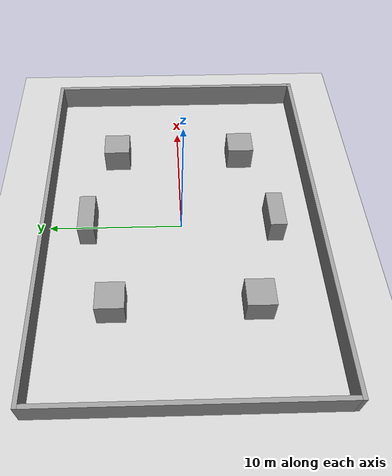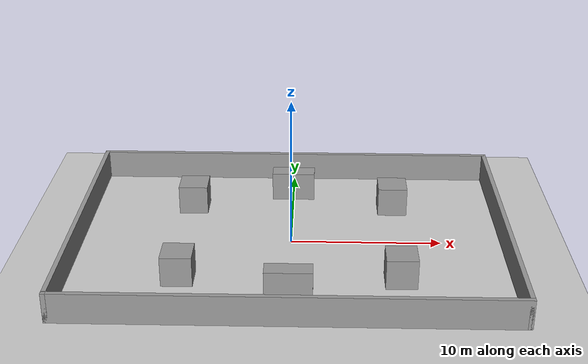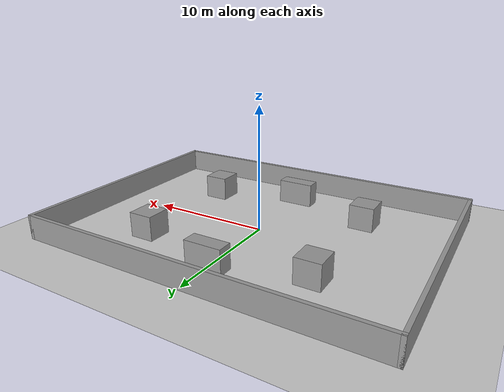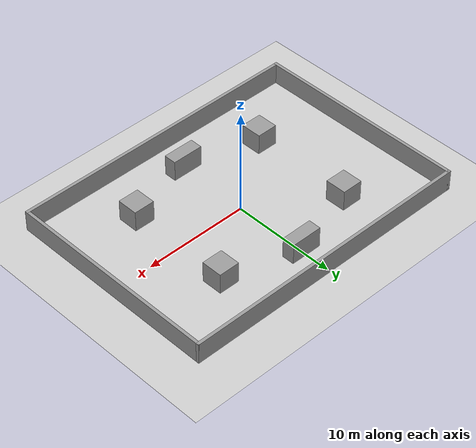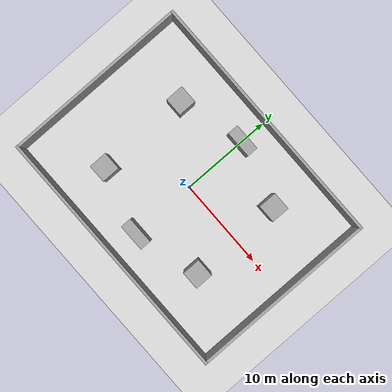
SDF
<?xml version="1.0" ?>
<sdf version='1.7'>
  <world name='room'>

    <light name='sun' type='directional'>
      <cast_shadows>1</cast_shadows>
      <pose>0 0 10 0 -0 0</pose>
      <diffuse>0.8 0.8 0.8 1</diffuse>
      <specular>0.2 0.2 0.2 1</specular>
      <attenuation>
        <range>1000</range>
        <constant>0.9</constant>
        <linear>0.01</linear>
        <quadratic>0.001</quadratic>
      </attenuation>
      <direction>-0.5 0.1 -0.9</direction>
      <spot>
        <inner_angle>0</inner_angle>
        <outer_angle>0</outer_angle>
        <falloff>0</falloff>
      </spot>
    </light>

    <!-- 地面：只做承载与显示，范围远大于房间（房间由外墙封闭，车出不去） -->
    <model name='ground_plane'>
      <static>1</static>
      <link name='link'>
        <collision name='collision'>
          <geometry>
            <plane>
              <normal>0 0 1</normal>
              <size>100 100</size>
            </plane>
          </geometry>
          <surface>
            <friction>
              <ode>
                <mu>100</mu>
                <mu2>50</mu2>
              </ode>
              <torsional>
                <ode/>
              </torsional>
            </friction>
            <contact>
              <ode/>
            </contact>
            <bounce/>
          </surface>
          <max_contacts>10</max_contacts>
        </collision>
        <visual name='visual'>
          <cast_shadows>0</cast_shadows>
          <geometry>
            <plane>
              <normal>0 0 1</normal>
              <size>100 100</size>
            </plane>
          </geometry>
          <material>
            <script>
              <uri>file://media/materials/scripts/gazebo.material</uri>
              <name>Gazebo/Grey</name>
            </script>
          </material>
        </visual>
        <self_collide>0</self_collide>
        <enable_wind>0</enable_wind>
        <kinematic>0</kinematic>
      </link>
    </model>

    <gravity>0 0 -9.8</gravity>
    <magnetic_field>6e-06 2.3e-05 -4.2e-05</magnetic_field>
    <atmosphere type='adiabatic'/>
    <physics type='ode'>
      <max_step_size>0.001</max_step_size>
      <real_time_factor>1</real_time_factor>
      <real_time_update_rate>2000</real_time_update_rate>
    </physics>
    <scene>
      <ambient>0.4 0.4 0.4 1</ambient>
      <background>0.7 0.7 0.7 1</background>
      <shadows>1</shadows>
    </scene>
    <wind/>

    <model name='room_wall_north'>
      <static>1</static>
      <pose>0 10.15 1.0 0 0 0</pose>
      <link name='Wall'>
        <collision name='Wall_Collision'>
          <pose>0 0 0 0 -0 0</pose>
          <geometry><box><size>28.6 0.3 2.0</size></box></geometry>
          <max_contacts>10</max_contacts>
          <surface>
            <contact><ode/></contact>
            <bounce/>
            <friction><torsional><ode/></torsional><ode/></friction>
          </surface>
        </collision>
        <visual name='Wall_Visual'>
          <pose>0 0 0 0 -0 0</pose>
          <geometry><box><size>28.6 0.3 2.0</size></box></geometry>
          <material>
            <script>
              <uri>file://media/materials/scripts/gazebo.material</uri>
              <name>Gazebo/Grey</name>
            </script>
          </material>
        </visual>
        <self_collide>0</self_collide>
        <enable_wind>0</enable_wind>
        <kinematic>0</kinematic>
      </link>
    </model>

    <model name='room_wall_south'>
      <static>1</static>
      <pose>0 -10.15 1.0 0 0 0</pose>
      <link name='Wall'>
        <collision name='Wall_Collision'>
          <pose>0 0 0 0 -0 0</pose>
          <geometry><box><size>28.6 0.3 2.0</size></box></geometry>
          <max_contacts>10</max_contacts>
          <surface>
            <contact><ode/></contact>
            <bounce/>
            <friction><torsional><ode/></torsional><ode/></friction>
          </surface>
        </collision>
        <visual name='Wall_Visual'>
          <pose>0 0 0 0 -0 0</pose>
          <geometry><box><size>28.6 0.3 2.0</size></box></geometry>
          <material>
            <script>
              <uri>file://media/materials/scripts/gazebo.material</uri>
              <name>Gazebo/Grey</name>
            </script>
          </material>
        </visual>
        <self_collide>0</self_collide>
        <enable_wind>0</enable_wind>
        <kinematic>0</kinematic>
      </link>
    </model>

    <model name='room_wall_east'>
      <static>1</static>
      <pose>14.15 0 1.0 0 0 1.5708</pose>
      <link name='Wall'>
        <collision name='Wall_Collision'>
          <pose>0 0 0 0 -0 0</pose>
          <geometry><box><size>20.6 0.3 2.0</size></box></geometry>
          <max_contacts>10</max_contacts>
          <surface>
            <contact><ode/></contact>
            <bounce/>
            <friction><torsional><ode/></torsional><ode/></friction>
          </surface>
        </collision>
        <visual name='Wall_Visual'>
          <pose>0 0 0 0 -0 0</pose>
          <geometry><box><size>20.6 0.3 2.0</size></box></geometry>
          <material>
            <script>
              <uri>file://media/materials/scripts/gazebo.material</uri>
              <name>Gazebo/Grey</name>
            </script>
          </material>
        </visual>
        <self_collide>0</self_collide>
        <enable_wind>0</enable_wind>
        <kinematic>0</kinematic>
      </link>
    </model>

    <model name='room_wall_west'>
      <static>1</static>
      <pose>-14.15 0 1.0 0 0 1.5708</pose>
      <link name='Wall'>
        <collision name='Wall_Collision'>
          <pose>0 0 0 0 -0 0</pose>
          <geometry><box><size>20.6 0.3 2.0</size></box></geometry>
          <max_contacts>10</max_contacts>
          <surface>
            <contact><ode/></contact>
            <bounce/>
            <friction><torsional><ode/></torsional><ode/></friction>
          </surface>
        </collision>
        <visual name='Wall_Visual'>
          <pose>0 0 0 0 -0 0</pose>
          <geometry><box><size>20.6 0.3 2.0</size></box></geometry>
          <material>
            <script>
              <uri>file://media/materials/scripts/gazebo.material</uri>
              <name>Gazebo/Grey</name>
            </script>
          </material>
        </visual>
        <self_collide>0</self_collide>
        <enable_wind>0</enable_wind>
        <kinematic>0</kinematic>
      </link>
    </model>

    <model name='room_pillar_px_py'>
      <static>1</static>
      <pose>7 5 1.0 0 0 0</pose>
      <link name='Pillar'>
        <collision name='Pillar_Collision'>
          <pose>0 0 0 0 -0 0</pose>
          <geometry><box><size>2.0 2.0 2.0</size></box></geometry>
          <max_contacts>10</max_contacts>
          <surface>
            <contact><ode/></contact>
            <bounce/>
            <friction><torsional><ode/></torsional><ode/></friction>
          </surface>
        </collision>
        <visual name='Pillar_Visual'>
          <pose>0 0 0 0 -0 0</pose>
          <geometry><box><size>2.0 2.0 2.0</size></box></geometry>
          <material>
            <script>
              <uri>file://media/materials/scripts/gazebo.material</uri>
              <name>Gazebo/Grey</name>
            </script>
          </material>
        </visual>
        <self_collide>0</self_collide>
        <enable_wind>0</enable_wind>
        <kinematic>0</kinematic>
      </link>
    </model>

    <model name='room_pillar_px_ny'>
      <static>1</static>
      <pose>7 -5 1.0 0 0 0</pose>
      <link name='Pillar'>
        <collision name='Pillar_Collision'>
          <pose>0 0 0 0 -0 0</pose>
          <geometry><box><size>2.0 2.0 2.0</size></box></geometry>
          <max_contacts>10</max_contacts>
          <surface>
            <contact><ode/></contact>
            <bounce/>
            <friction><torsional><ode/></torsional><ode/></friction>
          </surface>
        </collision>
        <visual name='Pillar_Visual'>
          <pose>0 0 0 0 -0 0</pose>
          <geometry><box><size>2.0 2.0 2.0</size></box></geometry>
          <material>
            <script>
              <uri>file://media/materials/scripts/gazebo.material</uri>
              <name>Gazebo/Grey</name>
            </script>
          </material>
        </visual>
        <self_collide>0</self_collide>
        <enable_wind>0</enable_wind>
        <kinematic>0</kinematic>
      </link>
    </model>

    <model name='room_pillar_nx_py'>
      <static>1</static>
      <pose>-7 5 1.0 0 0 0</pose>
      <link name='Pillar'>
        <collision name='Pillar_Collision'>
          <pose>0 0 0 0 -0 0</pose>
          <geometry><box><size>2.0 2.0 2.0</size></box></geometry>
          <max_contacts>10</max_contacts>
          <surface>
            <contact><ode/></contact>
            <bounce/>
            <friction><torsional><ode/></torsional><ode/></friction>
          </surface>
        </collision>
        <visual name='Pillar_Visual'>
          <pose>0 0 0 0 -0 0</pose>
          <geometry><box><size>2.0 2.0 2.0</size></box></geometry>
          <material>
            <script>
              <uri>file://media/materials/scripts/gazebo.material</uri>
              <name>Gazebo/Grey</name>
            </script>
          </material>
        </visual>
        <self_collide>0</self_collide>
        <enable_wind>0</enable_wind>
        <kinematic>0</kinematic>
      </link>
    </model>

    <model name='room_pillar_nx_ny'>
      <static>1</static>
      <pose>-7 -5 1.0 0 0 0</pose>
      <link name='Pillar'>
        <collision name='Pillar_Collision'>
          <pose>0 0 0 0 -0 0</pose>
          <geometry><box><size>2.0 2.0 2.0</size></box></geometry>
          <max_contacts>10</max_contacts>
          <surface>
            <contact><ode/></contact>
            <bounce/>
            <friction><torsional><ode/></torsional><ode/></friction>
          </surface>
        </collision>
        <visual name='Pillar_Visual'>
          <pose>0 0 0 0 -0 0</pose>
          <geometry><box><size>2.0 2.0 2.0</size></box></geometry>
          <material>
            <script>
              <uri>file://media/materials/scripts/gazebo.material</uri>
              <name>Gazebo/Grey</name>
            </script>
          </material>
        </visual>
        <self_collide>0</self_collide>
        <enable_wind>0</enable_wind>
        <kinematic>0</kinematic>
      </link>
    </model>

    <model name='room_bench_py'>
      <static>1</static>
      <pose>0 7 1.0 0 0 0</pose>
      <link name='Bench'>
        <collision name='Bench_Collision'>
          <pose>0 0 0 0 -0 0</pose>
          <geometry><box><size>3.0 1.2 2.0</size></box></geometry>
          <max_contacts>10</max_contacts>
          <surface>
            <contact><ode/></contact>
            <bounce/>
            <friction><torsional><ode/></torsional><ode/></friction>
          </surface>
        </collision>
        <visual name='Bench_Visual'>
          <pose>0 0 0 0 -0 0</pose>
          <geometry><box><size>3.0 1.2 2.0</size></box></geometry>
          <material>
            <script>
              <uri>file://media/materials/scripts/gazebo.material</uri>
              <name>Gazebo/Grey</name>
            </script>
          </material>
        </visual>
        <self_collide>0</self_collide>
        <enable_wind>0</enable_wind>
        <kinematic>0</kinematic>
      </link>
    </model>

    <model name='room_bench_ny'>
      <static>1</static>
      <pose>0 -7 1.0 0 0 0</pose>
      <link name='Bench'>
        <collision name='Bench_Collision'>
          <pose>0 0 0 0 -0 0</pose>
          <geometry><box><size>3.0 1.2 2.0</size></box></geometry>
          <max_contacts>10</max_contacts>
          <surface>
            <contact><ode/></contact>
            <bounce/>
            <friction><torsional><ode/></torsional><ode/></friction>
          </surface>
        </collision>
        <visual name='Bench_Visual'>
          <pose>0 0 0 0 -0 0</pose>
          <geometry><box><size>3.0 1.2 2.0</size></box></geometry>
          <material>
            <script>
              <uri>file://media/materials/scripts/gazebo.material</uri>
              <name>Gazebo/Grey</name>
            </script>
          </material>
        </visual>
        <self_collide>0</self_collide>
        <enable_wind>0</enable_wind>
        <kinematic>0</kinematic>
      </link>
    </model>

    <gui fullscreen='0'>
      <camera name='user_camera'>
        <pose>0 -28 26 0 0.95 1.5708</pose>
        <view_controller>orbit</view_controller>
        <projection_type>perspective</projection_type>
      </camera>
    </gui>

  </world>
</sdf>
